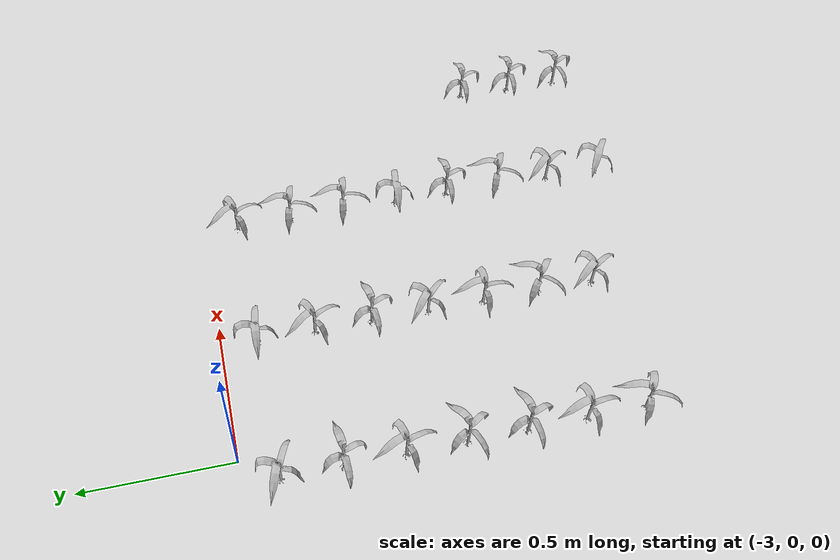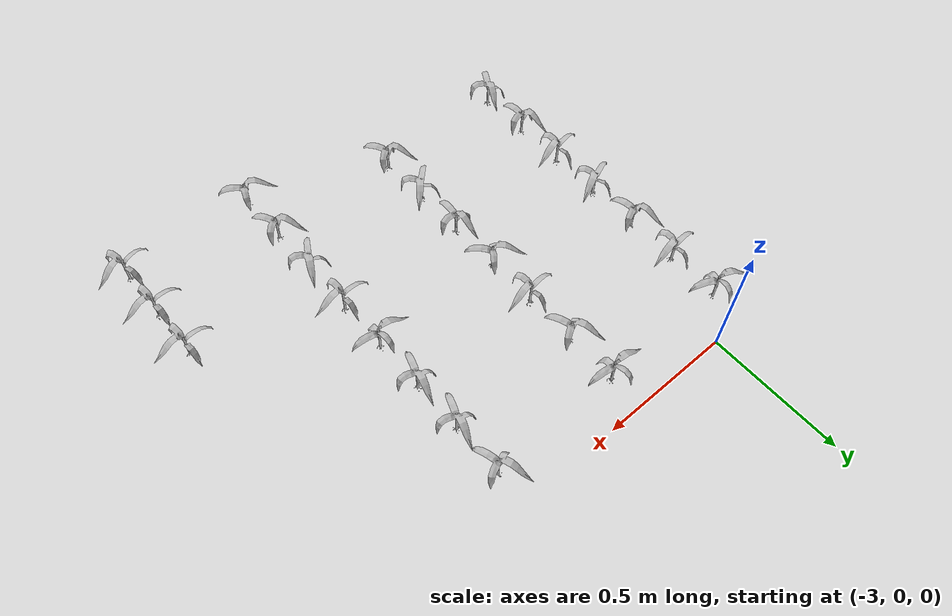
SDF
<sdf version="1.7">
 <world name="default">
  <model name="maize_-3.1033724693828124_-1.2899999999999996">
   <static>1</static>
   <link name="link">
    <inertial>
     <mass>0.2</mass>
     <inertia>
      <ixx>0.166667</ixx>
      <ixy>0</ixy>
      <ixz>0</ixz>
      <iyy>0.166667</iyy>
      <iyz>0</iyz>
      <izz>0.166667</izz>
     </inertia>
    </inertial>
    <collision name="collision">
     <geometry><mesh><uri>model://corn_3/meshes/corn.dae</uri><scale>0.25 0.25 0.25</scale></mesh></geometry>
     <surface>
      <friction><ode><mu>0</mu><mu2>0</mu2></ode></friction>
      <contact><ode><kp>0</kp><kd>0</kd><max_vel>0</max_vel><min_depth>0.002</min_depth></ode></contact>
     </surface>
    </collision>
    <visual name="visual">
     <geometry><mesh><uri>model://corn_3/meshes/corn.dae</uri><scale>0.25 0.25 0.25</scale></mesh></geometry>
    </visual>
    <velocity_decay><linear>0</linear><angular>0</angular></velocity_decay>
   </link>
   <pose>-3.10337 -1.29 0.05 0 -0 1.15309</pose>
  </model>
  <model name="maize_-3.1033724693828124_-1.0949999999999998">
   <static>1</static>
   <link name="link">
    <inertial>
     <mass>0.2</mass>
     <inertia>
      <ixx>0.166667</ixx>
      <ixy>0</ixy>
      <ixz>0</ixz>
      <iyy>0.166667</iyy>
      <iyz>0</iyz>
      <izz>0.166667</izz>
     </inertia>
    </inertial>
    <collision name="collision">
     <geometry><mesh><uri>model://corn_3/meshes/corn.dae</uri><scale>0.25 0.25 0.25</scale></mesh></geometry>
     <surface>
      <friction><ode><mu>0</mu><mu2>0</mu2></ode></friction>
      <contact><ode><kp>0</kp><kd>0</kd><max_vel>0</max_vel><min_depth>0.002</min_depth></ode></contact>
     </surface>
    </collision>
    <visual name="visual">
     <geometry><mesh><uri>model://corn_3/meshes/corn.dae</uri><scale>0.25 0.25 0.25</scale></mesh></geometry>
    </visual>
    <velocity_decay><linear>0</linear><angular>0</angular></velocity_decay>
   </link>
   <pose>-3.10337 -1.095 0.05 0 -0 1.76725</pose>
  </model>
  <model name="maize_-3.1033724693828124_-0.8999999999999995">
   <static>1</static>
   <link name="link">
    <inertial>
     <mass>0.2</mass>
     <inertia>
      <ixx>0.166667</ixx>
      <ixy>0</ixy>
      <ixz>0</ixz>
      <iyy>0.166667</iyy>
      <iyz>0</iyz>
      <izz>0.166667</izz>
     </inertia>
    </inertial>
    <collision name="collision">
     <geometry><mesh><uri>model://corn_3/meshes/corn.dae</uri><scale>0.25 0.25 0.25</scale></mesh></geometry>
     <surface>
      <friction><ode><mu>0</mu><mu2>0</mu2></ode></friction>
      <contact><ode><kp>0</kp><kd>0</kd><max_vel>0</max_vel><min_depth>0.002</min_depth></ode></contact>
     </surface>
    </collision>
    <visual name="visual">
     <geometry><mesh><uri>model://corn_3/meshes/corn.dae</uri><scale>0.25 0.25 0.25</scale></mesh></geometry>
    </visual>
    <velocity_decay><linear>0</linear><angular>0</angular></velocity_decay>
   </link>
   <pose>-3.10337 -0.9 0.05 0 -0 0.20582</pose>
  </model>
  <model name="maize_-3.1033724693828124_-0.7050000000000001">
   <static>1</static>
   <link name="link">
    <inertial>
     <mass>0.2</mass>
     <inertia>
      <ixx>0.166667</ixx>
      <ixy>0</ixy>
      <ixz>0</ixz>
      <iyy>0.166667</iyy>
      <iyz>0</iyz>
      <izz>0.166667</izz>
     </inertia>
    </inertial>
    <collision name="collision">
     <geometry><mesh><uri>model://corn_3/meshes/corn.dae</uri><scale>0.25 0.25 0.25</scale></mesh></geometry>
     <surface>
      <friction><ode><mu>0</mu><mu2>0</mu2></ode></friction>
      <contact><ode><kp>0</kp><kd>0</kd><max_vel>0</max_vel><min_depth>0.002</min_depth></ode></contact>
     </surface>
    </collision>
    <visual name="visual">
     <geometry><mesh><uri>model://corn_3/meshes/corn.dae</uri><scale>0.25 0.25 0.25</scale></mesh></geometry>
    </visual>
    <velocity_decay><linear>0</linear><angular>0</angular></velocity_decay>
   </link>
   <pose>-3.10337 -0.705 0.05 0 -0 0.44964</pose>
  </model>
  <model name="maize_-3.1033724693828124_-0.5099999999999998">
   <static>1</static>
   <link name="link">
    <inertial>
     <mass>0.2</mass>
     <inertia>
      <ixx>0.166667</ixx>
      <ixy>0</ixy>
      <ixz>0</ixz>
      <iyy>0.166667</iyy>
      <iyz>0</iyz>
      <izz>0.166667</izz>
     </inertia>
    </inertial>
    <collision name="collision">
     <geometry><mesh><uri>model://corn_3/meshes/corn.dae</uri><scale>0.25 0.25 0.25</scale></mesh></geometry>
     <surface>
      <friction><ode><mu>0</mu><mu2>0</mu2></ode></friction>
      <contact><ode><kp>0</kp><kd>0</kd><max_vel>0</max_vel><min_depth>0.002</min_depth></ode></contact>
     </surface>
    </collision>
    <visual name="visual">
     <geometry><mesh><uri>model://corn_3/meshes/corn.dae</uri><scale>0.25 0.25 0.25</scale></mesh></geometry>
    </visual>
    <velocity_decay><linear>0</linear><angular>0</angular></velocity_decay>
   </link>
   <pose>-3.10337 -0.51 0.05 0 -0 1.87761</pose>
  </model>
  <model name="maize_-3.1033724693828124_-0.3149999999999995">
   <static>1</static>
   <link name="link">
    <inertial>
     <mass>0.2</mass>
     <inertia>
      <ixx>0.166667</ixx>
      <ixy>0</ixy>
      <ixz>0</ixz>
      <iyy>0.166667</iyy>
      <iyz>0</iyz>
      <izz>0.166667</izz>
     </inertia>
    </inertial>
    <collision name="collision">
     <geometry><mesh><uri>model://corn_3/meshes/corn.dae</uri><scale>0.25 0.25 0.25</scale></mesh></geometry>
     <surface>
      <friction><ode><mu>0</mu><mu2>0</mu2></ode></friction>
      <contact><ode><kp>0</kp><kd>0</kd><max_vel>0</max_vel><min_depth>0.002</min_depth></ode></contact>
     </surface>
    </collision>
    <visual name="visual">
     <geometry><mesh><uri>model://corn_3/meshes/corn.dae</uri><scale>0.25 0.25 0.25</scale></mesh></geometry>
    </visual>
    <velocity_decay><linear>0</linear><angular>0</angular></velocity_decay>
   </link>
   <pose>-3.10337 -0.315 0.05 0 -0 0.125752</pose>
  </model>
  <model name="maize_-3.1033724693828124_-0.1200000000000001">
   <static>1</static>
   <link name="link">
    <inertial>
     <mass>0.2</mass>
     <inertia>
      <ixx>0.166667</ixx>
      <ixy>0</ixy>
      <ixz>0</ixz>
      <iyy>0.166667</iyy>
      <iyz>0</iyz>
      <izz>0.166667</izz>
     </inertia>
    </inertial>
    <collision name="collision">
     <geometry><mesh><uri>model://corn_3/meshes/corn.dae</uri><scale>0.25 0.25 0.25</scale></mesh></geometry>
     <surface>
      <friction><ode><mu>0</mu><mu2>0</mu2></ode></friction>
      <contact><ode><kp>0</kp><kd>0</kd><max_vel>0</max_vel><min_depth>0.002</min_depth></ode></contact>
     </surface>
    </collision>
    <visual name="visual">
     <geometry><mesh><uri>model://corn_3/meshes/corn.dae</uri><scale>0.25 0.25 0.25</scale></mesh></geometry>
    </visual>
    <velocity_decay><linear>0</linear><angular>0</angular></velocity_decay>
   </link>
   <pose>-3.10337 -0.12 0.05 0 -0 2.80328</pose>
  </model>
  <model name="maize_-2.605993253374367_-1.2899999999999996">
   <static>1</static>
   <link name="link">
    <inertial>
     <mass>0.2</mass>
     <inertia>
      <ixx>0.166667</ixx>
      <ixy>0</ixy>
      <ixz>0</ixz>
      <iyy>0.166667</iyy>
      <iyz>0</iyz>
      <izz>0.166667</izz>
     </inertia>
    </inertial>
    <collision name="collision">
     <geometry><mesh><uri>model://corn_3/meshes/corn.dae</uri><scale>0.25 0.25 0.25</scale></mesh></geometry>
     <surface>
      <friction><ode><mu>0</mu><mu2>0</mu2></ode></friction>
      <contact><ode><kp>0</kp><kd>0</kd><max_vel>0</max_vel><min_depth>0.002</min_depth></ode></contact>
     </surface>
    </collision>
    <visual name="visual">
     <geometry><mesh><uri>model://corn_3/meshes/corn.dae</uri><scale>0.25 0.25 0.25</scale></mesh></geometry>
    </visual>
    <velocity_decay><linear>0</linear><angular>0</angular></velocity_decay>
   </link>
   <pose>-2.60599 -1.29 0.05 0 -0 2.1802</pose>
  </model>
  <model name="maize_-2.605993253374367_-1.0949999999999998">
   <static>1</static>
   <link name="link">
    <inertial>
     <mass>0.2</mass>
     <inertia>
      <ixx>0.166667</ixx>
      <ixy>0</ixy>
      <ixz>0</ixz>
      <iyy>0.166667</iyy>
      <iyz>0</iyz>
      <izz>0.166667</izz>
     </inertia>
    </inertial>
    <collision name="collision">
     <geometry><mesh><uri>model://corn_3/meshes/corn.dae</uri><scale>0.25 0.25 0.25</scale></mesh></geometry>
     <surface>
      <friction><ode><mu>0</mu><mu2>0</mu2></ode></friction>
      <contact><ode><kp>0</kp><kd>0</kd><max_vel>0</max_vel><min_depth>0.002</min_depth></ode></contact>
     </surface>
    </collision>
    <visual name="visual">
     <geometry><mesh><uri>model://corn_3/meshes/corn.dae</uri><scale>0.25 0.25 0.25</scale></mesh></geometry>
    </visual>
    <velocity_decay><linear>0</linear><angular>0</angular></velocity_decay>
   </link>
   <pose>-2.60599 -1.095 0.05 0 -0 0.854947</pose>
  </model>
  <model name="maize_-2.605993253374367_-0.8999999999999995">
   <static>1</static>
   <link name="link">
    <inertial>
     <mass>0.2</mass>
     <inertia>
      <ixx>0.166667</ixx>
      <ixy>0</ixy>
      <ixz>0</ixz>
      <iyy>0.166667</iyy>
      <iyz>0</iyz>
      <izz>0.166667</izz>
     </inertia>
    </inertial>
    <collision name="collision">
     <geometry><mesh><uri>model://corn_3/meshes/corn.dae</uri><scale>0.25 0.25 0.25</scale></mesh></geometry>
     <surface>
      <friction><ode><mu>0</mu><mu2>0</mu2></ode></friction>
      <contact><ode><kp>0</kp><kd>0</kd><max_vel>0</max_vel><min_depth>0.002</min_depth></ode></contact>
     </surface>
    </collision>
    <visual name="visual">
     <geometry><mesh><uri>model://corn_3/meshes/corn.dae</uri><scale>0.25 0.25 0.25</scale></mesh></geometry>
    </visual>
    <velocity_decay><linear>0</linear><angular>0</angular></velocity_decay>
   </link>
   <pose>-2.60599 -0.9 0.05 0 -0 1.61218</pose>
  </model>
  <model name="maize_-2.605993253374367_-0.7050000000000001">
   <static>1</static>
   <link name="link">
    <inertial>
     <mass>0.2</mass>
     <inertia>
      <ixx>0.166667</ixx>
      <ixy>0</ixy>
      <ixz>0</ixz>
      <iyy>0.166667</iyy>
      <iyz>0</iyz>
      <izz>0.166667</izz>
     </inertia>
    </inertial>
    <collision name="collision">
     <geometry><mesh><uri>model://corn_3/meshes/corn.dae</uri><scale>0.25 0.25 0.25</scale></mesh></geometry>
     <surface>
      <friction><ode><mu>0</mu><mu2>0</mu2></ode></friction>
      <contact><ode><kp>0</kp><kd>0</kd><max_vel>0</max_vel><min_depth>0.002</min_depth></ode></contact>
     </surface>
    </collision>
    <visual name="visual">
     <geometry><mesh><uri>model://corn_3/meshes/corn.dae</uri><scale>0.25 0.25 0.25</scale></mesh></geometry>
    </visual>
    <velocity_decay><linear>0</linear><angular>0</angular></velocity_decay>
   </link>
   <pose>-2.60599 -0.705 0.05 0 -0 2.41056</pose>
  </model>
  <model name="maize_-2.605993253374367_-0.5099999999999998">
   <static>1</static>
   <link name="link">
    <inertial>
     <mass>0.2</mass>
     <inertia>
      <ixx>0.166667</ixx>
      <ixy>0</ixy>
      <ixz>0</ixz>
      <iyy>0.166667</iyy>
      <iyz>0</iyz>
      <izz>0.166667</izz>
     </inertia>
    </inertial>
    <collision name="collision">
     <geometry><mesh><uri>model://corn_3/meshes/corn.dae</uri><scale>0.25 0.25 0.25</scale></mesh></geometry>
     <surface>
      <friction><ode><mu>0</mu><mu2>0</mu2></ode></friction>
      <contact><ode><kp>0</kp><kd>0</kd><max_vel>0</max_vel><min_depth>0.002</min_depth></ode></contact>
     </surface>
    </collision>
    <visual name="visual">
     <geometry><mesh><uri>model://corn_3/meshes/corn.dae</uri><scale>0.25 0.25 0.25</scale></mesh></geometry>
    </visual>
    <velocity_decay><linear>0</linear><angular>0</angular></velocity_decay>
   </link>
   <pose>-2.60599 -0.51 0.05 0 -0 0.159088</pose>
  </model>
  <model name="maize_-2.605993253374367_-0.3149999999999995">
   <static>1</static>
   <link name="link">
    <inertial>
     <mass>0.2</mass>
     <inertia>
      <ixx>0.166667</ixx>
      <ixy>0</ixy>
      <ixz>0</ixz>
      <iyy>0.166667</iyy>
      <iyz>0</iyz>
      <izz>0.166667</izz>
     </inertia>
    </inertial>
    <collision name="collision">
     <geometry><mesh><uri>model://corn_3/meshes/corn.dae</uri><scale>0.25 0.25 0.25</scale></mesh></geometry>
     <surface>
      <friction><ode><mu>0</mu><mu2>0</mu2></ode></friction>
      <contact><ode><kp>0</kp><kd>0</kd><max_vel>0</max_vel><min_depth>0.002</min_depth></ode></contact>
     </surface>
    </collision>
    <visual name="visual">
     <geometry><mesh><uri>model://corn_3/meshes/corn.dae</uri><scale>0.25 0.25 0.25</scale></mesh></geometry>
    </visual>
    <velocity_decay><linear>0</linear><angular>0</angular></velocity_decay>
   </link>
   <pose>-2.60599 -0.315 0.05 0 -0 2.05172</pose>
  </model>
  <model name="maize_-2.605993253374367_-0.1200000000000001">
   <static>1</static>
   <link name="link">
    <inertial>
     <mass>0.2</mass>
     <inertia>
      <ixx>0.166667</ixx>
      <ixy>0</ixy>
      <ixz>0</ixz>
      <iyy>0.166667</iyy>
      <iyz>0</iyz>
      <izz>0.166667</izz>
     </inertia>
    </inertial>
    <collision name="collision">
     <geometry><mesh><uri>model://corn_3/meshes/corn.dae</uri><scale>0.25 0.25 0.25</scale></mesh></geometry>
     <surface>
      <friction><ode><mu>0</mu><mu2>0</mu2></ode></friction>
      <contact><ode><kp>0</kp><kd>0</kd><max_vel>0</max_vel><min_depth>0.002</min_depth></ode></contact>
     </surface>
    </collision>
    <visual name="visual">
     <geometry><mesh><uri>model://corn_3/meshes/corn.dae</uri><scale>0.25 0.25 0.25</scale></mesh></geometry>
    </visual>
    <velocity_decay><linear>0</linear><angular>0</angular></velocity_decay>
   </link>
   <pose>-2.60599 -0.12 0.05 0 -0 3.11068</pose>
  </model>
  <model name="maize_-2.1093609480429203_-1.4849999999999999">
   <static>1</static>
   <link name="link">
    <inertial>
     <mass>0.2</mass>
     <inertia>
      <ixx>0.166667</ixx>
      <ixy>0</ixy>
      <ixz>0</ixz>
      <iyy>0.166667</iyy>
      <iyz>0</iyz>
      <izz>0.166667</izz>
     </inertia>
    </inertial>
    <collision name="collision">
     <geometry><mesh><uri>model://corn_3/meshes/corn.dae</uri><scale>0.25 0.25 0.25</scale></mesh></geometry>
     <surface>
      <friction><ode><mu>0</mu><mu2>0</mu2></ode></friction>
      <contact><ode><kp>0</kp><kd>0</kd><max_vel>0</max_vel><min_depth>0.002</min_depth></ode></contact>
     </surface>
    </collision>
    <visual name="visual">
     <geometry><mesh><uri>model://corn_3/meshes/corn.dae</uri><scale>0.25 0.25 0.25</scale></mesh></geometry>
    </visual>
    <velocity_decay><linear>0</linear><angular>0</angular></velocity_decay>
   </link>
   <pose>-2.10936 -1.485 0.05 0 -0 2.63429</pose>
  </model>
  <model name="maize_-2.1093609480429203_-1.2899999999999996">
   <static>1</static>
   <link name="link">
    <inertial>
     <mass>0.2</mass>
     <inertia>
      <ixx>0.166667</ixx>
      <ixy>0</ixy>
      <ixz>0</ixz>
      <iyy>0.166667</iyy>
      <iyz>0</iyz>
      <izz>0.166667</izz>
     </inertia>
    </inertial>
    <collision name="collision">
     <geometry><mesh><uri>model://corn_3/meshes/corn.dae</uri><scale>0.25 0.25 0.25</scale></mesh></geometry>
     <surface>
      <friction><ode><mu>0</mu><mu2>0</mu2></ode></friction>
      <contact><ode><kp>0</kp><kd>0</kd><max_vel>0</max_vel><min_depth>0.002</min_depth></ode></contact>
     </surface>
    </collision>
    <visual name="visual">
     <geometry><mesh><uri>model://corn_3/meshes/corn.dae</uri><scale>0.25 0.25 0.25</scale></mesh></geometry>
    </visual>
    <velocity_decay><linear>0</linear><angular>0</angular></velocity_decay>
   </link>
   <pose>-2.10936 -1.29 0.05 0 -0 2.19771</pose>
  </model>
  <model name="maize_-2.1093609480429203_-1.0949999999999998">
   <static>1</static>
   <link name="link">
    <inertial>
     <mass>0.2</mass>
     <inertia>
      <ixx>0.166667</ixx>
      <ixy>0</ixy>
      <ixz>0</ixz>
      <iyy>0.166667</iyy>
      <iyz>0</iyz>
      <izz>0.166667</izz>
     </inertia>
    </inertial>
    <collision name="collision">
     <geometry><mesh><uri>model://corn_3/meshes/corn.dae</uri><scale>0.25 0.25 0.25</scale></mesh></geometry>
     <surface>
      <friction><ode><mu>0</mu><mu2>0</mu2></ode></friction>
      <contact><ode><kp>0</kp><kd>0</kd><max_vel>0</max_vel><min_depth>0.002</min_depth></ode></contact>
     </surface>
    </collision>
    <visual name="visual">
     <geometry><mesh><uri>model://corn_3/meshes/corn.dae</uri><scale>0.25 0.25 0.25</scale></mesh></geometry>
    </visual>
    <velocity_decay><linear>0</linear><angular>0</angular></velocity_decay>
   </link>
   <pose>-2.10936 -1.095 0.05 0 -0 1.13755</pose>
  </model>
  <model name="maize_-2.1093609480429203_-0.8999999999999995">
   <static>1</static>
   <link name="link">
    <inertial>
     <mass>0.2</mass>
     <inertia>
      <ixx>0.166667</ixx>
      <ixy>0</ixy>
      <ixz>0</ixz>
      <iyy>0.166667</iyy>
      <iyz>0</iyz>
      <izz>0.166667</izz>
     </inertia>
    </inertial>
    <collision name="collision">
     <geometry><mesh><uri>model://corn_3/meshes/corn.dae</uri><scale>0.25 0.25 0.25</scale></mesh></geometry>
     <surface>
      <friction><ode><mu>0</mu><mu2>0</mu2></ode></friction>
      <contact><ode><kp>0</kp><kd>0</kd><max_vel>0</max_vel><min_depth>0.002</min_depth></ode></contact>
     </surface>
    </collision>
    <visual name="visual">
     <geometry><mesh><uri>model://corn_3/meshes/corn.dae</uri><scale>0.25 0.25 0.25</scale></mesh></geometry>
    </visual>
    <velocity_decay><linear>0</linear><angular>0</angular></velocity_decay>
   </link>
   <pose>-2.10936 -0.9 0.05 0 -0 0.064614</pose>
  </model>
  <model name="maize_-2.1093609480429203_-0.7050000000000001">
   <static>1</static>
   <link name="link">
    <inertial>
     <mass>0.2</mass>
     <inertia>
      <ixx>0.166667</ixx>
      <ixy>0</ixy>
      <ixz>0</ixz>
      <iyy>0.166667</iyy>
      <iyz>0</iyz>
      <izz>0.166667</izz>
     </inertia>
    </inertial>
    <collision name="collision">
     <geometry><mesh><uri>model://corn_3/meshes/corn.dae</uri><scale>0.25 0.25 0.25</scale></mesh></geometry>
     <surface>
      <friction><ode><mu>0</mu><mu2>0</mu2></ode></friction>
      <contact><ode><kp>0</kp><kd>0</kd><max_vel>0</max_vel><min_depth>0.002</min_depth></ode></contact>
     </surface>
    </collision>
    <visual name="visual">
     <geometry><mesh><uri>model://corn_3/meshes/corn.dae</uri><scale>0.25 0.25 0.25</scale></mesh></geometry>
    </visual>
    <velocity_decay><linear>0</linear><angular>0</angular></velocity_decay>
   </link>
   <pose>-2.10936 -0.705 0.05 0 -0 3.0798</pose>
  </model>
  <model name="maize_-2.1093609480429203_-0.5099999999999998">
   <static>1</static>
   <link name="link">
    <inertial>
     <mass>0.2</mass>
     <inertia>
      <ixx>0.166667</ixx>
      <ixy>0</ixy>
      <ixz>0</ixz>
      <iyy>0.166667</iyy>
      <iyz>0</iyz>
      <izz>0.166667</izz>
     </inertia>
    </inertial>
    <collision name="collision">
     <geometry><mesh><uri>model://corn_3/meshes/corn.dae</uri><scale>0.25 0.25 0.25</scale></mesh></geometry>
     <surface>
      <friction><ode><mu>0</mu><mu2>0</mu2></ode></friction>
      <contact><ode><kp>0</kp><kd>0</kd><max_vel>0</max_vel><min_depth>0.002</min_depth></ode></contact>
     </surface>
    </collision>
    <visual name="visual">
     <geometry><mesh><uri>model://corn_3/meshes/corn.dae</uri><scale>0.25 0.25 0.25</scale></mesh></geometry>
    </visual>
    <velocity_decay><linear>0</linear><angular>0</angular></velocity_decay>
   </link>
   <pose>-2.10936 -0.51 0.05 0 -0 1.37016</pose>
  </model>
  <model name="maize_-2.1093609480429203_-0.3149999999999995">
   <static>1</static>
   <link name="link">
    <inertial>
     <mass>0.2</mass>
     <inertia>
      <ixx>0.166667</ixx>
      <ixy>0</ixy>
      <ixz>0</ixz>
      <iyy>0.166667</iyy>
      <iyz>0</iyz>
      <izz>0.166667</izz>
     </inertia>
    </inertial>
    <collision name="collision">
     <geometry><mesh><uri>model://corn_3/meshes/corn.dae</uri><scale>0.25 0.25 0.25</scale></mesh></geometry>
     <surface>
      <friction><ode><mu>0</mu><mu2>0</mu2></ode></friction>
      <contact><ode><kp>0</kp><kd>0</kd><max_vel>0</max_vel><min_depth>0.002</min_depth></ode></contact>
     </surface>
    </collision>
    <visual name="visual">
     <geometry><mesh><uri>model://corn_3/meshes/corn.dae</uri><scale>0.25 0.25 0.25</scale></mesh></geometry>
    </visual>
    <velocity_decay><linear>0</linear><angular>0</angular></velocity_decay>
   </link>
   <pose>-2.10936 -0.315 0.05 0 -0 1.31904</pose>
  </model>
  <model name="maize_-2.1093609480429203_-0.1200000000000001">
   <static>1</static>
   <link name="link">
    <inertial>
     <mass>0.2</mass>
     <inertia>
      <ixx>0.166667</ixx>
      <ixy>0</ixy>
      <ixz>0</ixz>
      <iyy>0.166667</iyy>
      <iyz>0</iyz>
      <izz>0.166667</izz>
     </inertia>
    </inertial>
    <collision name="collision">
     <geometry><mesh><uri>model://corn_3/meshes/corn.dae</uri><scale>0.25 0.25 0.25</scale></mesh></geometry>
     <surface>
      <friction><ode><mu>0</mu><mu2>0</mu2></ode></friction>
      <contact><ode><kp>0</kp><kd>0</kd><max_vel>0</max_vel><min_depth>0.002</min_depth></ode></contact>
     </surface>
    </collision>
    <visual name="visual">
     <geometry><mesh><uri>model://corn_3/meshes/corn.dae</uri><scale>0.25 0.25 0.25</scale></mesh></geometry>
    </visual>
    <velocity_decay><linear>0</linear><angular>0</angular></velocity_decay>
   </link>
   <pose>-2.10936 -0.12 0.05 0 -0 1.96356</pose>
  </model>
  <model name="maize_-1.6134747127982658_-1.4849999999999999">
   <static>1</static>
   <link name="link">
    <inertial>
     <mass>0.2</mass>
     <inertia>
      <ixx>0.166667</ixx>
      <ixy>0</ixy>
      <ixz>0</ixz>
      <iyy>0.166667</iyy>
      <iyz>0</iyz>
      <izz>0.166667</izz>
     </inertia>
    </inertial>
    <collision name="collision">
     <geometry><mesh><uri>model://corn_3/meshes/corn.dae</uri><scale>0.25 0.25 0.25</scale></mesh></geometry>
     <surface>
      <friction><ode><mu>0</mu><mu2>0</mu2></ode></friction>
      <contact><ode><kp>0</kp><kd>0</kd><max_vel>0</max_vel><min_depth>0.002</min_depth></ode></contact>
     </surface>
    </collision>
    <visual name="visual">
     <geometry><mesh><uri>model://corn_3/meshes/corn.dae</uri><scale>0.25 0.25 0.25</scale></mesh></geometry>
    </visual>
    <velocity_decay><linear>0</linear><angular>0</angular></velocity_decay>
   </link>
   <pose>-1.61347 -1.485 0.05 0 -0 0.283704</pose>
  </model>
  <model name="maize_-1.6134747127982658_-1.2899999999999996">
   <static>1</static>
   <link name="link">
    <inertial>
     <mass>0.2</mass>
     <inertia>
      <ixx>0.166667</ixx>
      <ixy>0</ixy>
      <ixz>0</ixz>
      <iyy>0.166667</iyy>
      <iyz>0</iyz>
      <izz>0.166667</izz>
     </inertia>
    </inertial>
    <collision name="collision">
     <geometry><mesh><uri>model://corn_3/meshes/corn.dae</uri><scale>0.25 0.25 0.25</scale></mesh></geometry>
     <surface>
      <friction><ode><mu>0</mu><mu2>0</mu2></ode></friction>
      <contact><ode><kp>0</kp><kd>0</kd><max_vel>0</max_vel><min_depth>0.002</min_depth></ode></contact>
     </surface>
    </collision>
    <visual name="visual">
     <geometry><mesh><uri>model://corn_3/meshes/corn.dae</uri><scale>0.25 0.25 0.25</scale></mesh></geometry>
    </visual>
    <velocity_decay><linear>0</linear><angular>0</angular></velocity_decay>
   </link>
   <pose>-1.61347 -1.29 0.05 0 -0 0.065521</pose>
  </model>
  <model name="maize_-1.6134747127982658_-1.0949999999999998">
   <static>1</static>
   <link name="link">
    <inertial>
     <mass>0.2</mass>
     <inertia>
      <ixx>0.166667</ixx>
      <ixy>0</ixy>
      <ixz>0</ixz>
      <iyy>0.166667</iyy>
      <iyz>0</iyz>
      <izz>0.166667</izz>
     </inertia>
    </inertial>
    <collision name="collision">
     <geometry><mesh><uri>model://corn_3/meshes/corn.dae</uri><scale>0.25 0.25 0.25</scale></mesh></geometry>
     <surface>
      <friction><ode><mu>0</mu><mu2>0</mu2></ode></friction>
      <contact><ode><kp>0</kp><kd>0</kd><max_vel>0</max_vel><min_depth>0.002</min_depth></ode></contact>
     </surface>
    </collision>
    <visual name="visual">
     <geometry><mesh><uri>model://corn_3/meshes/corn.dae</uri><scale>0.25 0.25 0.25</scale></mesh></geometry>
    </visual>
    <velocity_decay><linear>0</linear><angular>0</angular></velocity_decay>
   </link>
   <pose>-1.61347 -1.095 0.05 0 -0 0.057144</pose>
  </model>
 </world>
</sdf>
